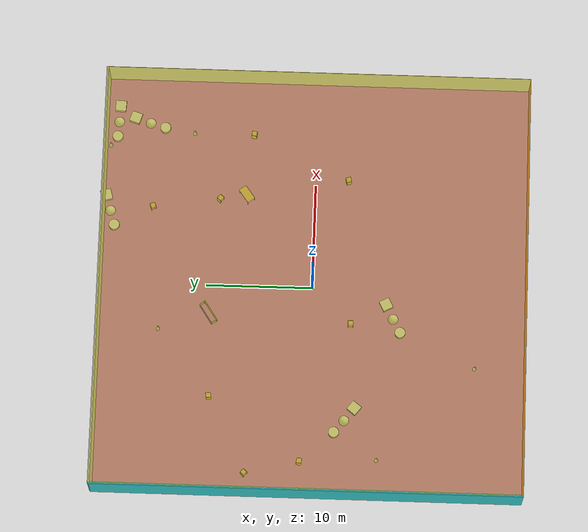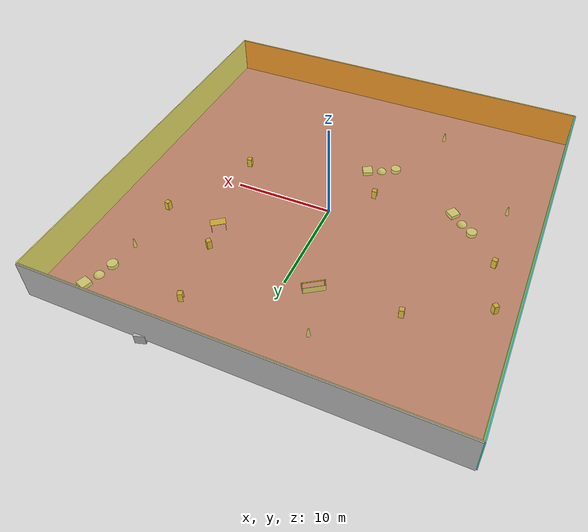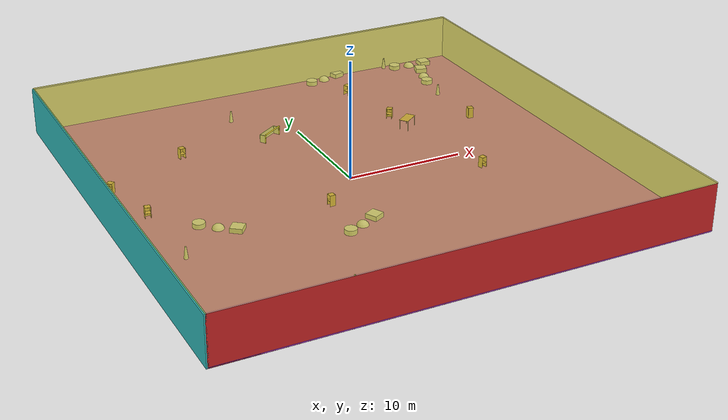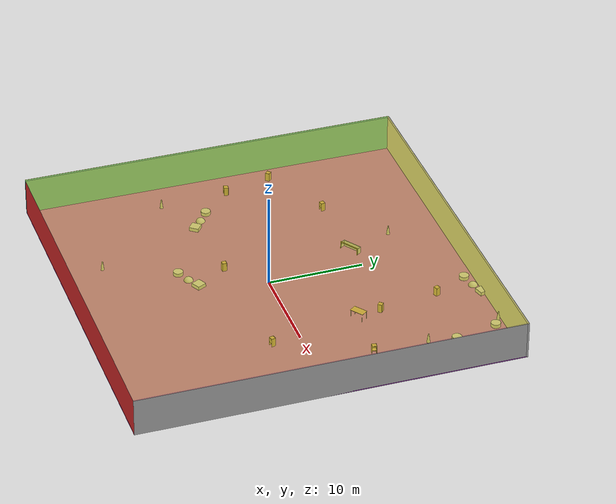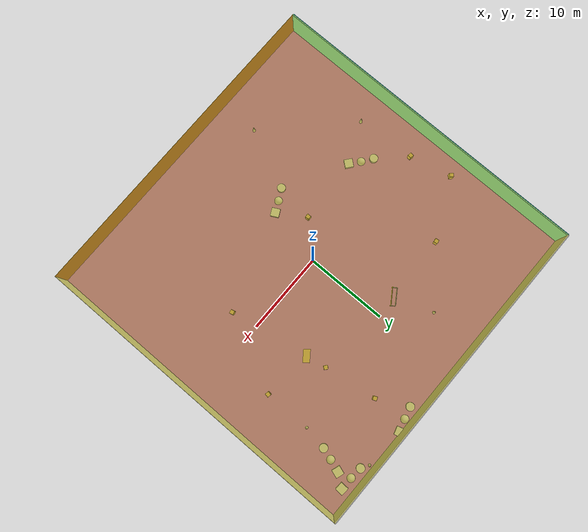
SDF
<sdf version="1.4">
 <world name="default">
  <physics type="ode">
   <max_step_size>0.001</max_step_size>
   <real_time_factor>1</real_time_factor>
   <real_time_update_rate>1000</real_time_update_rate>
   <gravity>0 0 -9.8</gravity>
  </physics>
  <scene><ambient>0.4 0.4 0.4 1</ambient><background>0.7 0.7 0.7 1</background><shadows>1</shadows></scene>
  <model name="Surrounding">
   <static>1</static>
   <link name="Ceiling">
    <collision name="Ceiling_Collision"><geometry><box><size>40 40 0.1</size></box></geometry></collision>
    <visual name="Ceiling_Visual">
     <geometry><box><size>40 40 0.1</size></box></geometry>
     <material>
      <script>
       <uri>file://media/materials/scripts/gazebo.material</uri>
       <name>Gazebo/YellowTransparent</name>
      </script>
     </material>
    </visual>
    <pose>0 0 4.05 0 0 0</pose>
   </link>
   <link name="Wall_South">
    <collision name="Wall_South_Collision">
     <geometry><box><size>40 0 4</size></box></geometry>
     <pose>0 0 2 0 -0 0</pose>
    </collision>
    <visual name="Wall_South_Visual">
     <pose>0 0 2 0 -0 0</pose>
     <geometry><box><size>40 0 4</size></box></geometry>
     <material>
      <script><uri>file://media/materials/scripts/gazebo.material</uri><name>Gazebo/RedBright</name></script>
     </material>
    </visual>
    <velocity_decay><linear>0</linear><angular>0</angular></velocity_decay>
    <pose>0 -20 0 0 -0 0</pose>
   </link>
   <link name="Wall_East">
    <collision name="Wall_21_Collision">
     <geometry><box><size>40 0 4</size></box></geometry>
     <pose>0 0 2 0 -0 0</pose>
    </collision>
    <visual name="Wall_21_Visual">
     <pose>0 0 2 0 -0 0</pose>
     <geometry><box><size>40 0 4</size></box></geometry>
     <material>
      <script><uri>file://media/materials/scripts/gazebo.material</uri><name>Gazebo/LightOn</name></script>
     </material>
    </visual>
    <velocity_decay><linear>0</linear><angular>0</angular></velocity_decay>
    <pose>20 0 0 0 -0 1.5708</pose>
   </link>
   <link name="Wall_North">
    <collision name="Wall_22_Collision">
     <geometry><box><size>40 0.2 4</size></box></geometry>
     <pose>0 0 2 0 -0 0</pose>
    </collision>
    <visual name="Wall_22_Visual">
     <pose>0 0 2 0 -0 0</pose>
     <geometry><box><size>40 0.2 4</size></box></geometry>
     <material>
      <script><uri>file://media/materials/scripts/gazebo.material</uri><name>Gazebo/CloudySky</name></script>
     </material>
    </visual>
    <velocity_decay><linear>0</linear><angular>0</angular></velocity_decay>
    <pose>0 20 0 0 -0 0</pose>
   </link>
   <link name="Wall_West">
    <collision name="Wall_23_Collision">
     <geometry><box><size>40 0.2 4</size></box></geometry>
     <pose>0 0 2 0 -0 0</pose>
    </collision>
    <visual name="Wall_23_Visual">
     <pose>0 0 2 0 -0 0</pose>
     <geometry><box><size>40 0.2 4</size></box></geometry>
     <material>
      <script><uri>file://media/materials/scripts/gazebo.material</uri><name>Gazebo/TurquoiseGlow</name></script>
     </material>
    </visual>
    <velocity_decay><linear>0</linear><angular>0</angular></velocity_decay>
    <pose>-20 0 0 0 0 -1.5708</pose>
   </link>
   <link name="Ground_link">
    <collision name="collision">
     <pose>0 0 .05 0 -0 0</pose>
     <geometry><box><size>40 40 0.1</size></box></geometry>
    </collision>
    <visual name="visual">
     <pose>0 0 .05 0 -0 0</pose>
     <geometry><box><size>40 40 0.1</size></box></geometry>
     <material>
      <script><uri>file://media/materials/scripts/gazebo.material</uri><name>Gazebo/Purple</name></script>
     </material>
    </visual>
   </link>
   <static>1</static>
  </model>
  <spherical_coordinates>
   <surface_model>EARTH_WGS84</surface_model>
   <latitude_deg>0</latitude_deg>
   <longitude_deg>0</longitude_deg>
   <elevation>0</elevation>
   <heading_deg>0</heading_deg>
  </spherical_coordinates>
  <light name="lightball_0" type="diffuse">
   <diffuse>0.8 0.8 0.8 1</diffuse>
   <specular>0.2 0.2 0.2 1</specular>
   <attenuation>
    <range>100</range>
    <constant>0.7</constant>
    <linear>0.01</linear>
    <quadratic>0.001</quadratic>
   </attenuation>
   <direction>-0.5 0.1 -0.9</direction>
   <pose>16.7677790408 -19.2934928113 3.19093421276 0 0 0</pose>
  </light>
  <light name="lightball_1" type="diffuse">
   <diffuse>0.8 0.8 0.8 1</diffuse>
   <specular>0.2 0.2 0.2 1</specular>
   <attenuation>
    <range>100</range>
    <constant>0.7</constant>
    <linear>0.01</linear>
    <quadratic>0.001</quadratic>
   </attenuation>
   <direction>-0.5 0.1 -0.9</direction>
   <pose>-12.2377620155 3.86296220823 3.75562589653 0 0 0</pose>
  </light>
  <light name="lightball_2" type="diffuse">
   <diffuse>0.8 0.8 0.8 1</diffuse>
   <specular>0.2 0.2 0.2 1</specular>
   <attenuation>
    <range>100</range>
    <constant>0.7</constant>
    <linear>0.01</linear>
    <quadratic>0.001</quadratic>
   </attenuation>
   <direction>-0.5 0.1 -0.9</direction>
   <pose>-18.33952502 -18.8333629497 0.759215200339 0 0 0</pose>
  </light>
  <light name="lightball_3" type="diffuse">
   <diffuse>0.8 0.8 0.8 1</diffuse>
   <specular>0.2 0.2 0.2 1</specular>
   <attenuation>
    <range>100</range>
    <constant>0.7</constant>
    <linear>0.01</linear>
    <quadratic>0.001</quadratic>
   </attenuation>
   <direction>-0.5 0.1 -0.9</direction>
   <pose>-14.7451398282 -12.5222991456 1.72869794055 0 0 0</pose>
  </light>
  <light name="lightball_4" type="diffuse">
   <diffuse>0.8 0.8 0.8 1</diffuse>
   <specular>0.2 0.2 0.2 1</specular>
   <attenuation>
    <range>100</range>
    <constant>0.7</constant>
    <linear>0.01</linear>
    <quadratic>0.001</quadratic>
   </attenuation>
   <direction>-0.5 0.1 -0.9</direction>
   <pose>-6.05643518255 -16.4400980834 2.42773075411 0 0 0</pose>
  </light>
  <light name="lightball_5" type="diffuse">
   <diffuse>0.8 0.8 0.8 1</diffuse>
   <specular>0.2 0.2 0.2 1</specular>
   <attenuation>
    <range>100</range>
    <constant>0.7</constant>
    <linear>0.01</linear>
    <quadratic>0.001</quadratic>
   </attenuation>
   <direction>-0.5 0.1 -0.9</direction>
   <pose>-7.02627991159 6.79596846313 2.73688431527 0 0 0</pose>
  </light>
  <light name="lightball_6" type="diffuse">
   <diffuse>0.8 0.8 0.8 1</diffuse>
   <specular>0.2 0.2 0.2 1</specular>
   <attenuation>
    <range>100</range>
    <constant>0.7</constant>
    <linear>0.01</linear>
    <quadratic>0.001</quadratic>
   </attenuation>
   <direction>-0.5 0.1 -0.9</direction>
   <pose>-15.1966293097 0.235276725404 1.11994994113 0 0 0</pose>
  </light>
  <light name="lightball_7" type="diffuse">
   <diffuse>0.8 0.8 0.8 1</diffuse>
   <specular>0.2 0.2 0.2 1</specular>
   <attenuation>
    <range>100</range>
    <constant>0.7</constant>
    <linear>0.01</linear>
    <quadratic>0.001</quadratic>
   </attenuation>
   <direction>-0.5 0.1 -0.9</direction>
   <pose>17.9245100844 17.2269104461 1.37089965861 0 0 0</pose>
  </light>
  <light name="lightball_8" type="diffuse">
   <diffuse>0.8 0.8 0.8 1</diffuse>
   <specular>0.2 0.2 0.2 1</specular>
   <attenuation>
    <range>100</range>
    <constant>0.7</constant>
    <linear>0.01</linear>
    <quadratic>0.001</quadratic>
   </attenuation>
   <direction>-0.5 0.1 -0.9</direction>
   <pose>-12.8049160382 4.8180282362 1.27910757734 0 0 0</pose>
  </light>
  <include>
   <uri>model://construction_cone</uri>
   <pose>-16.3481259141 -6.43436231056 0 0 0 0.446187521241</pose>
  </include>
  <include><uri>model://cabinet</uri><pose>-16.7322548745 0.744312668008 0 0 0 1.42429264166</pose></include>
  <include><uri>model://cabinet</uri><pose>-17.9817071496 5.84499717794 0 0 0 0.785730690907</pose></include>
  <include>
   <uri>model://textured_shapes</uri>
   <pose>-12.6412355196 -3.3097011617 0 0 0 0.904361673486</pose>
  </include>
  <include><uri>model://cabinet</uri><pose>-10.7846859328 9.39518880484 0 0 0 1.72839500132</pose></include>
  <include>
   <uri>model://construction_cone</uri>
   <pose>-7.34422034196 -15.3724351184 0 0 0 2.55805014317</pose>
  </include>
  <include>
   <uri>model://construction_cone</uri>
   <pose>-4.38012408326 14.3841453284 0 0 0 1.98231741462</pose>
  </include>
  <include>
   <uri>model://textured_shapes</uri>
   <pose>-2.77391181071 -7.64005559434 0 0 0 2.04325108494</pose>
  </include>
  <include><uri>model://cabinet</uri><pose>-3.45427144033 -3.66006744725 0 0 0 0.0379560675424</pose></include>
  <include>
   <uri>model://robocup_3Dsim_goal</uri>
   <pose>-2.60937303369 9.50364025717 0 0 0 2.15932613619</pose>
  </include>
  <include><uri>model://cabinet</uri><pose>7.38193442231 15.3193253981 0 0 0 0.377561241481</pose></include>
  <include>
   <uri>model://textured_shapes</uri>
   <pose>6.98447416452 19.372656933 0 0 0 1.85481956918</pose>
  </include>
  <include><uri>model://cabinet</uri><pose>10.4666858681 -3.08941188452 0 0 0 1.80508029156</pose></include>
  <include><uri>model://table</uri><pose>8.75931883457 6.49436209813 0 0 0 0.634652605147</pose></include>
  <include><uri>model://cabinet</uri><pose>8.33744190822 8.96272809176 0 0 0 0.886402083917</pose></include>
  <include>
   <uri>model://construction_cone</uri>
   <pose>13.371906553 19.5771393867 0 0 0 1.56835336153</pose>
  </include>
  <include><uri>model://cabinet</uri><pose>14.747778557 5.98962129055 0 0 0 2.97536175179</pose></include>
  <include>
   <uri>model://construction_cone</uri>
   <pose>14.7733911186 11.654620363 0 0 0 0.682814925249</pose>
  </include>
  <include>
   <uri>model://textured_shapes</uri>
   <pose>15.6910081265 15.9029626744 0 0 0 2.82524785614</pose>
  </include>
  <include>
   <uri>model://textured_shapes</uri>
   <pose>15.748141577 18.8927248174 0 0 0 1.51447487986</pose>
  </include>
 </world>
</sdf>

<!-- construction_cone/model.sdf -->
<sdf version="1.5">
  <model name="Construction Cone">
    <link name="link">
      <collision name="collision">
        <geometry>
          <mesh>
            <scale>10 10 10</scale>
            <uri>file://isr-testbed/construction_cone/meshes/construction_cone.dae</uri>
          </mesh>
        </geometry>
      </collision>
      <visual name="visual">
        <geometry>
          <mesh>
            <scale>10 10 10</scale>
            <uri>file://isr-testbed/construction_cone/meshes/construction_cone.dae</uri>
          </mesh>
        </geometry>
      </visual>
    </link>
  </model>
</sdf>

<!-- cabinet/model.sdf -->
<sdf version="1.5">
  <model name="cabinet">
    <static>true</static>
    <link name="cabinet_bottom_plate">
      <inertial>
        <pose>0 0 -1 0 0 0</pose>
        <inertia>
          <ixx>2.050000</ixx>
          <ixy>0</ixy>
          <ixz>0</ixz>
          <iyy>2.050000</iyy>
          <iyz>0</iyz>
          <izz>2.050000</izz>
        </inertia>
        <mass>25.000000</mass>
      </inertial>
      <collision name="cabinet_bottom_plate_geom">
        <pose>0 0 0.010000 0 0 0</pose>
        <geometry>
          <box>
            <size>0.450000 0.450000 0.020000</size>
          </box>
        </geometry>
      </collision>
      <visual name="cabinet_bottom_plate_geom_visual">
        <pose>0 0 0.010000 0 0 0</pose>
        <geometry>
          <box>
            <size>0.450000 0.450000 0.020000</size>
          </box>
        </geometry>
        <material>
          <script>
            <uri>model://media/materials/scripts/gazebo.material</uri>
            <name>Gazebo/Wood</name>
          </script>
        </material>
      </visual>
      <collision name="cabinet_bottom_plate_geom_cabinet_back_plate">
        <pose>0.235000 0 0.510000 0 0 0</pose>
        <geometry>
          <box>
            <size>0.020000 0.450000 1.020000</size>
          </box>
        </geometry>
      </collision>
      <visual name="cabinet_bottom_plate_geom_cabinet_back_plate_visual">
        <pose>0.235000 0 0.510000 0 0 0</pose>
        <geometry>
          <box>
            <size>0.020000 0.450000 1.020000</size>
          </box>
        </geometry>
        <material>
          <script>
            <uri>model://media/materials/scripts/gazebo.material</uri>
            <name>Gazebo/Wood</name>
          </script>
        </material>
      </visual>
      <collision name="cabinet_bottom_plate_geom_cabinet_left_plate">
        <pose>0 0.235000 0.510000 0 0 0</pose>
        <geometry>
          <box>
            <size>0.450000 0.020000 1.020000</size>
          </box>
        </geometry>
      </collision>
      <visual name="cabinet_bottom_plate_geom_cabinet_left_plate_visual">
        <pose>0 0.235000 0.510000 0 0 0</pose>
        <geometry>
          <box>
            <size>0.450000 0.020000 1.020000</size>
          </box>
        </geometry>
        <material>
          <script>
            <uri>model://media/materials/scripts/gazebo.material</uri>
            <name>Gazebo/Wood</name>
          </script>
        </material>
      </visual>
      <collision name="cabinet_bottom_plate_geom_cabinet_middle_plate">
        <pose>0 0 0.510000 0 0 0</pose>
        <geometry>
          <box>
            <size>0.450000 0.450000 0.020000</size>
          </box>
        </geometry>
      </collision>
      <visual name="cabinet_bottom_plate_geom_cabinet_middle_plate_visual">
        <pose>0 0 0.510000 0 0 0</pose>
        <geometry>
          <box>
            <size>0.450000 0.450000 0.020000</size>
          </box>
        </geometry>
        <material>
          <script>
            <uri>model://media/materials/scripts/gazebo.material</uri>
            <name>Gazebo/Wood</name>
          </script>
        </material>
      </visual>
      <collision name="cabinet_bottom_plate_geom_cabinet_right_plate">
        <pose>0 -0.235000 0.510000 0 0 0</pose>
        <geometry>
          <box>
            <size>0.450000 0.020000 1.020000</size>
          </box>
        </geometry>
      </collision>
      <visual name="cabinet_bottom_plate_geom_cabinet_right_plate_visual">
        <pose>0 -0.235000 0.510000 0 0 0</pose>
        <geometry>
          <box>
            <size>0.450000 0.020000 1.020000</size>
          </box>
        </geometry>
        <material>
          <script>
            <uri>model://media/materials/scripts/gazebo.material</uri>
            <name>Gazebo/Wood</name>
          </script>
        </material>
      </visual>
      <collision name="cabinet_bottom_plate_geom_cabinet_top_plate">
        <pose>0 0 1.010000 0 0 0</pose>
        <geometry>
          <box>
            <size>0.450000 0.450000 0.020000</size>
          </box>
        </geometry>
      </collision>
      <visual name="cabinet_bottom_plate_geom_cabinet_top_plate_visual">
        <pose>0 0 1.010000 0 0 0</pose>
        <geometry>
          <box>
            <size>0.450000 0.450000 0.020000</size>
          </box>
        </geometry>
        <material>
          <script>
            <uri>model://media/materials/scripts/gazebo.material</uri>
            <name>Gazebo/Wood</name>
          </script>
        </material>
      </visual>
    </link>
  </model>
</sdf>

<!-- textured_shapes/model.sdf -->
<sdf version="1.6">
  <model name="textured_shapes">
    <pose>0 0 0.5 0 0 0</pose>
    <link name="box">
      <pose>0 -1.5 0 0 0 0</pose>
      <collision name="collision">
        <geometry>
          <box>
            <size>1 1 1</size>
          </box>
        </geometry>
      </collision>
      <visual name="visual">
        <geometry>
          <box>
            <size>1 1 1</size>
          </box>
        </geometry>
        <material>
          <script>
            <uri>model://../model_source/models/textured_shapes/materials/scripts</uri>
            <uri>model://../model_source/models/textured_shapes/materials/textures</uri>
            <name>TexturedShape/Squares</name>
          </script>
        </material>
      </visual>
    </link>
    <link name="sphere">
      <collision name="collision">
        <geometry>
          <sphere>
            <radius>0.5</radius>
          </sphere>
        </geometry>
      </collision>
      <visual name="visual">
        <geometry>
          <sphere>
            <radius>0.5</radius>
          </sphere>
        </geometry>
        <material>
          <script>
            <uri>model://../model_source/models/textured_shapes/materials/scripts</uri>
            <uri>model://../model_source/models/textured_shapes/materials/textures</uri>
            <name>TexturedShape/Squares</name>
          </script>
        </material>
      </visual>
    </link>
    <link name="cylinder">
      <pose>0 1.5 0 0 0 0</pose>
      <collision name="collision">
        <geometry>
          <cylinder>
            <radius>0.5</radius>
            <length>1</length>
          </cylinder>
        </geometry>
      </collision>
      <visual name="visual">
        <geometry>
          <cylinder>
            <radius>0.5</radius>
            <length>1</length>
          </cylinder>
        </geometry>
        <material>
          <script>
            <uri>model://../model_source/models/textured_shapes/materials/scripts</uri>
            <uri>model://../model_source/models/textured_shapes/materials/textures</uri>
            <name>TexturedShape/Squares</name>
          </script>
        </material>
      </visual>
    </link>
  </model>
</sdf>

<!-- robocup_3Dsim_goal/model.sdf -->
<sdf version="1.5">
  <model name="robocup_3d_goal">
    <static>true</static>
    <link name="left_post">
      <pose>0 1.05 0.45 0 0 0</pose>
      <collision name="collision">
        <geometry>
          <cylinder>
            <radius>0.05</radius>
            <length>0.9</length>
          </cylinder>
        </geometry>
      </collision>
      <visual name="visual">
        <geometry>
          <cylinder>
            <radius>0.05</radius>
            <length>0.9</length>
          </cylinder>
        </geometry>
        <material>
          <script>
            <uri>file://media/materials/scripts/gazebo.material</uri>
            <name>Gazebo/ZincYellow</name>
          </script>
        </material>
      </visual>
    </link>
    <link name="left_support_horiz_lower">
      <pose>0.30 1.05 0.01 0 0 0</pose>
      <collision name="collision">
        <geometry>
          <box>
            <size>0.50 0.02 0.02</size>
          </box>
        </geometry>
      </collision>
      <visual name="visual">
        <geometry>
          <box>
            <size>0.50 0.02 0.02</size>
          </box>
        </geometry>
        <material>
          <script>
            <uri>file://media/materials/scripts/gazebo.material</uri>
            <name>Gazebo/White</name>
          </script>
        </material>
      </visual>
    </link>
    <link name="left_support_horiz_upper">
      <pose>0.30 1.05 0.79 0 0 0</pose>
      <collision name="collision">
        <geometry>
          <box>
            <size>0.50 0.02 0.02</size>
          </box>
        </geometry>
      </collision>
      <visual name="visual">
        <geometry>
          <box>
            <size>0.50 0.02 0.02</size>
          </box>
        </geometry>
        <material>
          <script>
            <uri>file://media/materials/scripts/gazebo.material</uri>
            <name>Gazebo/White</name>
          </script>
        </material>
      </visual>
    </link>
    <link name="left_support_vertical">
      <pose>0.56 1.05 0.4 0 1.5708 0</pose>
      <collision name="collision">
        <geometry>
          <box>
            <size>0.80 0.02 0.02</size>
          </box>
        </geometry>
      </collision>
      <visual name="visual">
        <geometry>
          <box>
            <size>0.80 0.02 0.02</size>
          </box>
        </geometry>
        <material>
          <script>
            <uri>file://media/materials/scripts/gazebo.material</uri>
            <name>Gazebo/White</name>
          </script>
        </material>
      </visual>
    </link>
    <link name="right_support_horiz_lower">
      <pose>0.30 -1.05 0.01 0 0 0</pose>
      <collision name="collision">
        <geometry>
          <box>
            <size>0.50 0.02 0.02</size>
          </box>
        </geometry>
      </collision>
      <visual name="visual">
        <geometry>
          <box>
            <size>0.50 0.02 0.02</size>
          </box>
        </geometry>
        <material>
          <script>
            <uri>file://media/materials/scripts/gazebo.material</uri>
            <name>Gazebo/White</name>
          </script>
        </material>
      </visual>
    </link>
    <link name="right_support_horiz_upper">
      <pose>0.30 -1.05 0.79 0 0 0</pose>
      <collision name="collision">
        <geometry>
          <box>
            <size>0.50 0.02 0.02</size>
          </box>
        </geometry>
      </collision>
      <visual name="visual">
        <geometry>
          <box>
            <size>0.50 0.02 0.02</size>
          </box>
        </geometry>
        <material>
          <script>
            <uri>file://media/materials/scripts/gazebo.material</uri>
            <name>Gazebo/White</name>
          </script>
        </material>
      </visual>
    </link>
    <link name="right_support_vertical">
      <pose>0.56 -1.05 0.4 0 1.5708 0</pose>
      <collision name="collision">
        <geometry>
          <box>
            <size>0.80 0.02 0.02</size>
          </box>
        </geometry>
      </collision>
      <visual name="visual">
        <geometry>
          <box>
            <size>0.80 0.02 0.02</size>
          </box>
        </geometry>
        <material>
          <script>
            <uri>file://media/materials/scripts/gazebo.material</uri>
            <name>Gazebo/White</name>
          </script>
        </material>
      </visual>
    </link>
    <link name="center_support_horiz_lower">
      <pose>0.56 0 0.01 0 1.5708 0</pose>
      <collision name="collision">
        <geometry>
          <box>
            <size>0.02 2.08 0.02</size>
          </box>
        </geometry>
      </collision>
      <visual name="visual">
        <geometry>
          <box>
            <size>0.02 2.08 0.02</size>
          </box>
        </geometry>
        <material>
          <script>
            <uri>file://media/materials/scripts/gazebo.material</uri>
            <name>Gazebo/White</name>
          </script>
        </material>
      </visual>
    </link>
    <link name="center_support_horiz_upper">
      <pose>0.56 0 0.79 0 1.5708 0</pose>
      <collision name="collision">
        <geometry>
          <box>
            <size>0.02 2.08 0.02</size>
          </box>
        </geometry>
      </collision>
      <visual name="visual">
        <geometry>
          <box>
            <size>0.02 2.08 0.02</size>
          </box>
        </geometry>
        <material>
          <script>
            <uri>file://media/materials/scripts/gazebo.material</uri>
            <name>Gazebo/White</name>
          </script>
        </material>
      </visual>
    </link>
    <link name="right_post">
      <pose>0 -1.05 0.45 0 0 0</pose>
      <collision name="collision">
        <geometry>
          <cylinder>
            <radius>0.05</radius>
            <length>0.9</length>
          </cylinder>
        </geometry>
      </collision>
      <visual name="visual">
        <geometry>
          <cylinder>
            <radius>0.05</radius>
            <length>0.9</length>
          </cylinder>
        </geometry>
        <material>
          <script>
            <uri>file://media/materials/scripts/gazebo.material</uri>
            <name>Gazebo/ZincYellow</name>
          </script>
        </material>
      </visual>
    </link>
    <link name="crossbar">
      <pose>0 0 0.85 1.57 1.57 0</pose>
      <collision name="collision">
        <geometry>
          <cylinder>
            <radius>0.05</radius>
            <length>2.0</length>
          </cylinder>
        </geometry>
      </collision>
      <visual name="visual">
        <geometry>
          <cylinder>
            <radius>0.05</radius>
            <length>2.0</length>
          </cylinder>
        </geometry>
        <material>
          <script>
            <uri>file://media/materials/scripts/gazebo.material</uri>
            <name>Gazebo/ZincYellow</name>
          </script>
        </material>
      </visual>
    </link>
    <link name="center_net">
      <pose>0.56 0 0.40 0 0 0</pose>
      <collision name="collision">
        <geometry>
          <box>
            <size>0.01 2.1 0.80</size>
          </box>
        </geometry>
      </collision>
      <visual name="visual">
        <geometry>
          <box>
            <size>0.01 2.1 0.80</size>
          </box>
        </geometry>
        <material>
          <script>
            <uri>model://../model_source/models/robocup09_spl_field/materials/scripts/</uri>
            <uri>model://../model_source/models/robocup09_spl_field/materials/textures/</uri>
            <name>RoboCup/Net</name>
          </script>
        </material>
      </visual>
    </link>
    <link name="left_net">
      <pose>0.30 1.05 0.40 0 0 0</pose>
      <collision name="collision">
        <geometry>
          <box>
            <size>0.50 0.01 0.76</size>
          </box>
        </geometry>
      </collision>
      <visual name="visual">
        <geometry>
          <box>
            <size>0.50 0.01 0.76</size>
          </box>
        </geometry>
        <material>
          <script>
            <uri>model://../model_source/models/robocup09_spl_field/materials/scripts/</uri>
            <uri>model://../model_source/models/robocup09_spl_field/materials/textures/</uri>
            <name>RoboCup/Net</name>
          </script>
        </material>
      </visual>
    </link>
    <link name="right_net">
      <pose>0.30 -1.05 0.40 0 0 0</pose>
      <collision name="collision">
        <geometry>
          <box>
            <size>0.50 0.01 0.76</size>
          </box>
        </geometry>
      </collision>
      <visual name="visual">
        <geometry>
          <box>
            <size>0.50 0.01 0.76</size>
          </box>
        </geometry>
        <material>
          <script>
            <uri>model://../model_source/models/robocup09_spl_field/materials/scripts/</uri>
            <uri>model://../model_source/models/robocup09_spl_field/materials/textures/</uri>
            <name>RoboCup/Net</name>
          </script>
        </material>
      </visual>
    </link>
  </model>
</sdf>

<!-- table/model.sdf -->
<sdf version="1.5">
  <model name="table">
    <static>true</static>
    <link name="link">
      <collision name="surface">
        <pose>0 0 1.0 0 0 0</pose>
        <geometry>
          <box>
            <size>1.5 0.8 0.03</size>
          </box>
        </geometry>
        <surface>
          <friction>
            <ode>
              <mu>0.6</mu>
              <mu2>0.6</mu2>
            </ode>
          </friction>
        </surface>
      </collision>
      <visual name="visual1">
        <pose>0 0 1.0 0 0 0</pose>
        <geometry>
          <box>
            <size>1.5 0.8 0.03</size>
          </box>
        </geometry>
        <material>
          <script>
            <uri>model://media/materials/scripts/gazebo.material</uri>
            <name>Gazebo/Wood</name>
          </script>
        </material>
      </visual>
      <collision name="front_left_leg">
        <pose>0.68 0.38 0.5 0 0 0</pose>
        <geometry>
          <cylinder>
            <radius>0.02</radius>
            <length>1.0</length>
          </cylinder>
        </geometry>
      </collision>
      <visual name="front_left_leg">
        <pose>0.68 0.38 0.5 0 0 0</pose>
        <geometry>
          <cylinder>
            <radius>0.02</radius>
            <length>1.0</length>
          </cylinder>
        </geometry>
        <material>
          <script>
            <uri>model://media/materials/scripts/gazebo.material</uri>
            <name>Gazebo/Grey</name>
          </script>
        </material>
      </visual>
      <collision name="front_right_leg">
        <pose>0.68 -0.38 0.5 0 0 0</pose>
        <geometry>
          <cylinder>
            <radius>0.02</radius>
            <length>1.0</length>
          </cylinder>
        </geometry>
      </collision>
      <visual name="front_right_leg">
        <pose>0.68 -0.38 0.5 0 0 0</pose>
        <geometry>
          <cylinder>
            <radius>0.02</radius>
            <length>1.0</length>
          </cylinder>
        </geometry>
        <material>
          <script>
            <uri>model://media/materials/scripts/gazebo.material</uri>
            <name>Gazebo/Grey</name>
          </script>
        </material>
      </visual>
      <collision name="back_right_leg">
        <pose>-0.68 -0.38 0.5 0 0 0</pose>
        <geometry>
          <cylinder>
            <radius>0.02</radius>
            <length>1.0</length>
          </cylinder>
        </geometry>
      </collision>
      <visual name="back_right_leg">
        <pose>-0.68 -0.38 0.5 0 0 0</pose>
        <geometry>
          <cylinder>
            <radius>0.02</radius>
            <length>1.0</length>
          </cylinder>
        </geometry>
        <material>
          <script>
            <uri>model://media/materials/scripts/gazebo.material</uri>
            <name>Gazebo/Grey</name>
          </script>
        </material>
      </visual>
      <collision name="back_left_leg">
        <pose>-0.68 0.38 0.5 0 0 0</pose>
        <geometry>
          <cylinder>
            <radius>0.02</radius>
            <length>1.0</length>
          </cylinder>
        </geometry>
      </collision>
      <visual name="back_left_leg">
        <pose>-0.68 0.38 0.5 0 0 0</pose>
        <geometry>
          <cylinder>
            <radius>0.02</radius>
            <length>1.0</length>
          </cylinder>
        </geometry>
        <material>
          <script>
            <uri>model://media/materials/scripts/gazebo.material</uri>
            <name>Gazebo/Grey</name>
          </script>
        </material>
      </visual>
    </link>
  </model>
</sdf>
